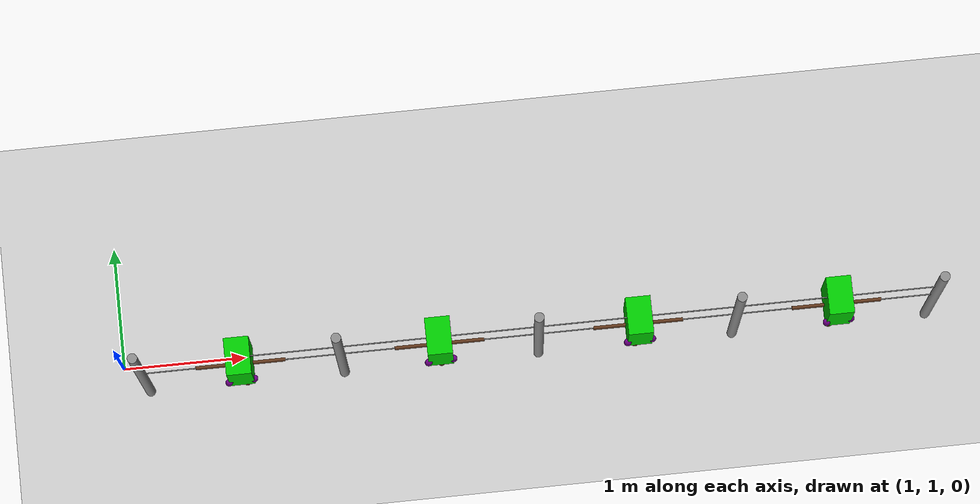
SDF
<?xml version="1.0"?>
<sdf version="1.7">
<world name="vineyard">

    <plugin name="gazebo_ros_init" filename="libgazebo_ros_init.so"/>
    <plugin name="gazebo_ros_factory" filename="libgazebo_ros_factory.so"/>
    <plugin name="gazebo_ros_state" filename="libgazebo_ros_state.so"/>

    <include>
        <uri>model://ground_plane</uri>
    </include>

    <include>
        <uri>model://sun</uri>
    </include>

    <!-- Planta 1 -->
    <include>
        <name>vineyard_row_1</name>
        <uri>model://vineyard_row</uri>
        <pose>2 0.8 0 0 0 0</pose>
    </include>

    <!-- Planta 2 -->
    <include>
        <name>vineyard_row_2</name>
        <uri>model://vineyard_row</uri>
        <pose>3.6 0.8 0 0 0 0</pose>
    </include>

    <!-- Planta 3 -->
    <include>
        <name>vineyard_row_3</name>
        <uri>model://vineyard_row</uri>
        <pose>5.2 0.8 0 0 0 0</pose>
    </include>

    <!-- Planta 4 -->
    <include>
        <name>vineyard_row_4</name>
        <uri>model://vineyard_row</uri>
        <pose>6.8 0.8 0 0 0 0</pose>
    </include>

    <!-- Racimo de uva -->
    <include>
        <name>grape_1</name>
        <uri>model://grape_cluster</uri>
        <pose>1.9 0.65 1 0 0 0</pose>
    </include>

    <include>
        <name>grape_2</name>
        <uri>model://grape_cluster</uri>
        <pose>2.1 0.67 0.95 0 0 0</pose>
    </include>

    <include>
        <name>grape_3</name>
        <uri>model://grape_cluster</uri>
        <pose>3.5 0.65 1 0 0 0</pose>
    </include>

    <include>
        <name>grape_4</name>
        <uri>model://grape_cluster</uri>
        <pose>3.7 0.67 0.95 0 0 0</pose>
    </include>

    <include>
        <name>grape_5</name>
        <uri>model://grape_cluster</uri>
        <pose>5.1 0.65 1 0 0 0</pose>
    </include>

    <include>
        <name>grape_6</name>
        <uri>model://grape_cluster</uri>
        <pose>5.3 0.67 0.95 0 0 0</pose>
    </include>

    <include>
        <name>grape_7</name>
        <uri>model://grape_cluster</uri>
        <pose>6.7 0.65 1 0 0 0</pose>
    </include>

    <include>
        <name>grape_8</name>
        <uri>model://grape_cluster</uri>
        <pose>6.9 0.67 0.95 0 0 0</pose>
    </include>

</world>
</sdf>

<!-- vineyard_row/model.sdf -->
<sdf version="1.7">

<model name="vineyard_row">

  <static>true</static>

  <!-- TRONCO -->

  <link name="trunk">

    <pose>0 0 0.5 0 0 0</pose>

    <collision name="collision">
      <geometry>
        <cylinder>
          <radius>0.03</radius>
          <length>0.90</length>
        </cylinder>
      </geometry>
    </collision>

    <visual name="visual">
      <geometry>
        <cylinder>
          <radius>0.03</radius>
          <length>1.50</length>
        </cylinder>
      </geometry>

      <material>
        <ambient>0.38 0.22 0.10 1</ambient>
        <diffuse>0.38 0.22 0.10 1</diffuse>
      </material>

    </visual>

  </link>

  <!-- BRAZO IZQUIERDO -->

  <link name="branch_left">

    <pose>-0.18 0 0.95 0 1.5708 0</pose>

    <visual name="visual">

      <geometry>
        <cylinder>
          <radius>0.015</radius>
          <length>0.36</length>
        </cylinder>

      </geometry>

      <material>
        <ambient>0.40 0.23 0.12 1</ambient>
        <diffuse>0.40 0.23 0.12 1</diffuse>
      </material>

    </visual>

    <collision name="collision">

      <geometry>

        <cylinder>
          <radius>0.015</radius>
          <length>0.36</length>
        </cylinder>

      </geometry>

    </collision>

  </link>

  <!-- BRAZO DERECHO -->

  <link name="branch_right">

    <pose>0.18 0 0.95 0 1.5708 0</pose>

    <visual name="visual">

      <geometry>

        <cylinder>
          <radius>0.015</radius>
          <length>0.36</length>

        </cylinder>

      </geometry>

      <material>
        <ambient>0.40 0.23 0.12 1</ambient>
        <diffuse>0.40 0.23 0.12 1</diffuse>
      </material>

    </visual>

    <collision name="collision">

      <geometry>

        <cylinder>
          <radius>0.015</radius>
          <length>0.36</length>

        </cylinder>

      </geometry>

    </collision>

  </link>

  <!-- POSTE IZQUIERDO -->

  <link name="post_left">

    <pose>-0.80 0 0.75 0 0 0</pose>

    <visual name="visual">

      <geometry>

        <cylinder>
          <radius>0.04</radius>
          <length>2.0</length>

        </cylinder>

      </geometry>

      <material>

        <ambient>0.55 0.55 0.55 1</ambient>
        <diffuse>0.55 0.55 0.55 1</diffuse>

      </material>

    </visual>

    <collision name="collision">

      <geometry>

        <cylinder>
          <radius>0.04</radius>
          <length>2.0</length>

        </cylinder>

      </geometry>

    </collision>

  </link>

  <!-- POSTE DERECHO -->

  <link name="post_right">

    <pose>0.80 0 0.75 0 0 0</pose>

    <visual name="visual">

      <geometry>

        <cylinder>
          <radius>0.04</radius>
          <length>2.0</length>

        </cylinder>

      </geometry>

      <material>

        <ambient>0.55 0.55 0.55 1</ambient>
        <diffuse>0.55 0.55 0.55 1</diffuse>

      </material>

    </visual>

    <collision name="collision">

      <geometry>

        <cylinder>
          <radius>0.04</radius>
          <length>2.0</length>

        </cylinder>

      </geometry>

    </collision>

  </link>

  <!-- ALAMBRE INFERIOR -->

  <link name="wire_lower">

    <pose>0 0 0.95 0 1.5708 0</pose>

    <visual name="visual">

      <geometry>

        <cylinder>
          <radius>0.005</radius>
          <length>1.60</length>

        </cylinder>

      </geometry>

      <material>

        <ambient>0.75 0.75 0.75 1</ambient>
        <diffuse>0.75 0.75 0.75 1</diffuse>

      </material>

    </visual>

  </link>

  <!-- ALAMBRE SUPERIOR -->

  <link name="wire_upper">

    <pose>0 0 1.30 0 1.5708 0</pose>

    <visual name="visual">

      <geometry>

        <cylinder>
          <radius>0.005</radius>
          <length>1.60</length>

        </cylinder>

      </geometry>

      <material>

        <ambient>0.75 0.75 0.75 1</ambient>
        <diffuse>0.75 0.75 0.75 1</diffuse>

      </material>

    </visual>

  </link>

  <!-- HOJAS -->

  <link name="leaves">

  <pose>0 0 1.10 0 0 0</pose>
    <!-- TONO 2: Franja Central (Verde Claro + Reflejo) -->
    <visual name="visual_stripe_2">
      <pose>0 0 0 0 0 0</pose>
      <geometry>
        <box>
          <size>0.2 0.30 0.55</size>
        </box>
      </geometry>
      <material>
        <ambient>0.0 0.6 0.0 1</ambient>
        <diffuse>0.0 0.8 0.0 1</diffuse>
        <!-- Genera un brillo reflejado al incidir la luz del entorno -->
        <specular>0.5 0.5 0.5 1</specular>
        <shininess>20</shininess>
      </material>
    </visual>

</link>

</model>

</sdf>

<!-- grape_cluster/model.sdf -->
<sdf version="1.7">

  <model name="grape_cluster">

    <static>false</static>

    <link name="cluster">

      <gravity>false</gravity>

      <pose>0 0 0 0 0 0</pose>

      <collision name="collision">

        <geometry>
          <sphere>
            <radius>0.03</radius>
          </sphere>
        </geometry>
        <!-- AÑADE ESTA SECCIÓN IGUAL QUE EN LAS HOJAS -->
        <surface>
          <contact>
            <collide_bitmask>0x00</collide_bitmask>
          </contact>
        </surface>
      </collision>

      <visual name="visual">

        <geometry>
          <sphere>
            <radius>0.03</radius>
          </sphere>
        </geometry>

        <material>

          <ambient>0.45 0.0 0.55 1</ambient>
          <diffuse>0.45 0.0 0.55 1</diffuse>
          <!-- Agrega estas dos líneas para crear un punto de brillo blanco artificial -->
          <specular>0.4 0.4 0.4 1</specular>
          <shininess>10</shininess>
        </material>

      </visual>

      <inertial>
        <mass>0.03</mass>
        <inertia>
          <ixx>0.000016</ixx>
          <iyy>0.000016</iyy>
          <izz>0.000016</izz>
          <ixy>0.0</ixy>
          <ixz>0.0</ixz>
          <iyz>0.0</iyz>
        </inertia>
      </inertial>

    </link>

  </model>

</sdf>
